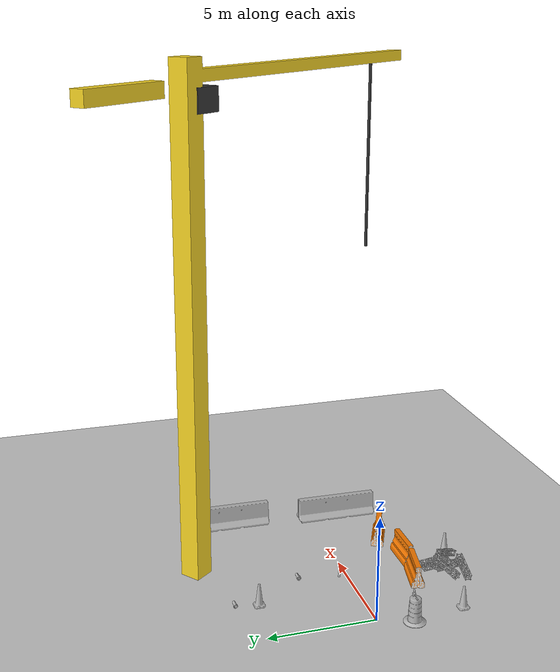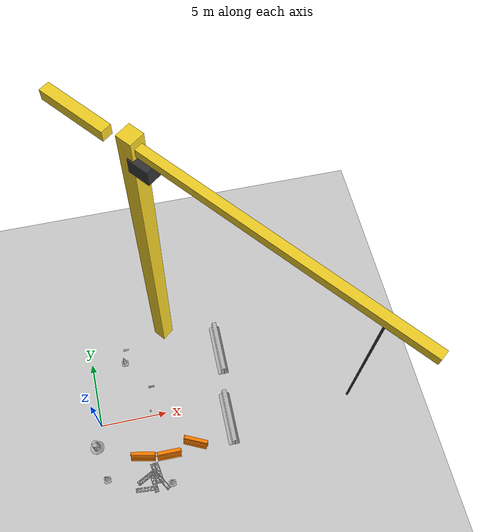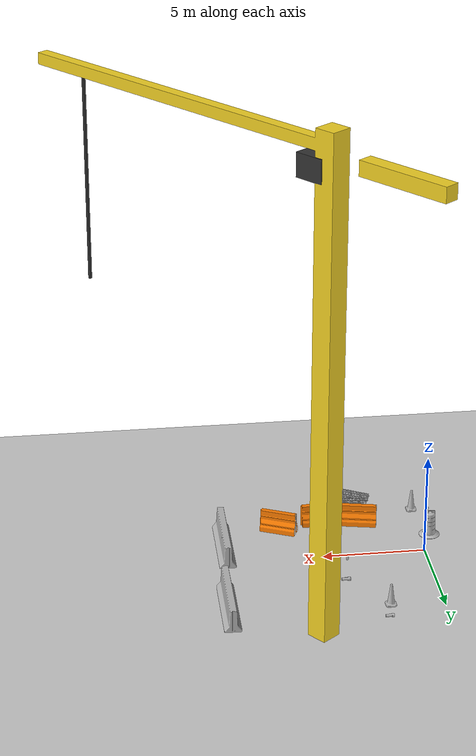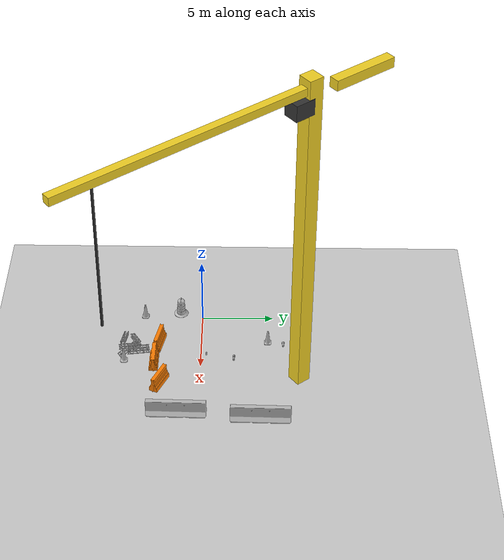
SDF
<sdf version="1.6">
 <world name="default">
  <model name="ground_plane">
   <static>1</static>
   <link name="link">
    <collision name="collision">
     <geometry><plane><normal>0 0 1</normal><size>100 100</size></plane></geometry>
     <surface><friction><ode><mu>100</mu><mu2>50</mu2></ode></friction></surface>
    </collision>
    <visual name="visual">
     <cast_shadows>0</cast_shadows>
     <geometry><plane><normal>0 0 1</normal><size>100 100</size></plane></geometry>
     <material>
      <script><uri>file://media/materials/scripts/gazebo.material</uri><name>Gazebo/Grey</name></script>
     </material>
    </visual>
   </link>
  </model>
  <model name="tower_crane">
   <static>1</static>
   <link name="link">
    <collision name="collision">
     <geometry><mesh><uri>model://tower_crane/meshes/tower_crane.dae</uri></mesh></geometry>
    </collision>
    <visual name="visual">
     <geometry><mesh><uri>model://tower_crane/meshes/tower_crane.dae</uri></mesh></geometry>
    </visual>
   </link>
   <pose>6.03726 6.79238 0 0 0 -0.898155</pose>
  </model>
  <model name="Construction Barrel_0">
   <link name="link">
    <inertial>
     <pose>0 0 0.4 0 -0 0</pose>
     <mass>500</mass>
     <inertia><ixx>51.2096</ixx><iyy>51.2096</iyy><izz>25</izz><ixy>0</ixy><ixz>0</ixz><iyz>0</iyz></inertia>
    </inertial>
    <collision name="collision">
     <geometry><mesh><uri>model://construction_barrel/meshes/construction_barrel.dae</uri></mesh></geometry>
    </collision>
    <visual name="visual">
     <geometry><mesh><uri>model://construction_barrel/meshes/construction_barrel.dae</uri></mesh></geometry>
    </visual>
   </link>
   <pose>-0.545068 -1.56645 -0 0 -0 5.6e-05</pose>
  </model>
  <model name="drc_practice_organge_jersey_barrier_clone_clone_clone_clone">
   <static>1</static>
   <link name="link">
    <visual name="visual">
     <geometry>
      <mesh><uri>model://drc_practice_orange_jersey_barrier/meshes/jersey_barrier.dae</uri></mesh>
     </geometry>
    </visual>
    <collision name="collision">
     <geometry>
      <mesh><uri>model://drc_practice_orange_jersey_barrier/meshes/jersey_barrier.dae</uri></mesh>
     </geometry>
    </collision>
   </link>
   <pose>2.74419 -2.98704 0 0 -0 1.36537</pose>
  </model>
  <model name="drc_practice_organge_jersey_barrier_clone_clone_clone_clone_0">
   <static>1</static>
   <link name="link">
    <visual name="visual">
     <geometry>
      <mesh><uri>model://drc_practice_orange_jersey_barrier/meshes/jersey_barrier.dae</uri></mesh>
     </geometry>
    </visual>
    <collision name="collision">
     <geometry>
      <mesh><uri>model://drc_practice_orange_jersey_barrier/meshes/jersey_barrier.dae</uri></mesh>
     </geometry>
    </collision>
   </link>
   <pose>4.65125 -3.23691 0 0 -0 1.56758</pose>
  </model>
  <model name="drc_practice_organge_jersey_barrier_clone_clone_clone_clone_0_clone">
   <static>1</static>
   <link name="link">
    <visual name="visual">
     <geometry>
      <mesh><uri>model://drc_practice_orange_jersey_barrier/meshes/jersey_barrier.dae</uri></mesh>
     </geometry>
    </visual>
    <collision name="collision">
     <geometry>
      <mesh><uri>model://drc_practice_orange_jersey_barrier/meshes/jersey_barrier.dae</uri></mesh>
     </geometry>
    </collision>
   </link>
   <pose>6.76004 -2.75764 0 0 -0 1.13718</pose>
  </model>
  <model name="jersey_barrier">
   <static>1</static>
   <link name="link">
    <visual name="visual">
     <geometry><mesh><uri>model://jersey_barrier/meshes/jersey_barrier.dae</uri></mesh></geometry>
    </visual>
    <collision name="upright">
     <pose>0 0 0.5715 0 -0 0</pose>
     <geometry><box><size>4.06542 0.3063 1.143</size></box></geometry>
    </collision>
    <collision name="base">
     <pose>0 0 0.032258 0 -0 0</pose>
     <geometry><box><size>4.06542 0.8107 0.064516</size></box></geometry>
    </collision>
    <collision name="base2">
     <pose>0 0 0.1 0 -0 0</pose>
     <geometry><box><size>4.06542 0.65 0.1</size></box></geometry>
    </collision>
    <collision name="base3">
     <pose>0 0 0.2 0 -0 0</pose>
     <geometry><box><size>4.06542 0.5 0.1</size></box></geometry>
    </collision>
    <collision name="left-angle">
     <pose>0 -0.224 0.2401 0.9 -0 0</pose>
     <geometry><box><size>4.06542 0.5 0.064516</size></box></geometry>
    </collision>
    <collision name="right-angle">
     <pose>0 0.224 0.2401 -0.9 0 0</pose>
     <geometry><box><size>4.06542 0.5 0.064516</size></box></geometry>
    </collision>
   </link>
   <pose>9.60721 -1.47907 0 0 -0 1.55298</pose>
  </model>
  <model name="jersey_barrier_clone">
   <static>1</static>
   <link name="link">
    <visual name="visual">
     <geometry><mesh><uri>model://jersey_barrier/meshes/jersey_barrier.dae</uri></mesh></geometry>
    </visual>
    <collision name="upright">
     <pose>0 0 0.5715 0 -0 0</pose>
     <geometry><box><size>4.06542 0.3063 1.143</size></box></geometry>
    </collision>
    <collision name="base">
     <pose>0 0 0.032258 0 -0 0</pose>
     <geometry><box><size>4.06542 0.8107 0.064516</size></box></geometry>
    </collision>
    <collision name="base2">
     <pose>0 0 0.1 0 -0 0</pose>
     <geometry><box><size>4.06542 0.65 0.1</size></box></geometry>
    </collision>
    <collision name="base3">
     <pose>0 0 0.2 0 -0 0</pose>
     <geometry><box><size>4.06542 0.5 0.1</size></box></geometry>
    </collision>
    <collision name="left-angle">
     <pose>0 -0.224 0.2401 0.9 -0 0</pose>
     <geometry><box><size>4.06542 0.5 0.064516</size></box></geometry>
    </collision>
    <collision name="right-angle">
     <pose>0 0.224 0.2401 -0.9 0 0</pose>
     <geometry><box><size>4.06542 0.5 0.064516</size></box></geometry>
    </collision>
   </link>
   <pose>10.0278 4.16885 0 0 -0 1.55298</pose>
  </model>
  <model name="beer">
   <link name="link">
    <pose>0 0 0.115 0 -0 0</pose>
    <inertial>
     <mass>0.39</mass>
     <inertia><ixx>0.00058</ixx><ixy>0</ixy><ixz>0</ixz><iyy>0.00058</iyy><iyz>0</iyz><izz>0.00019</izz></inertia>
    </inertial>
    <collision name="collision">
     <geometry><cylinder><radius>0.055</radius><length>0.23</length></cylinder></geometry>
    </collision>
    <visual name="visual">
     <geometry><cylinder><radius>0.055</radius><length>0.23</length></cylinder></geometry>
     <material>
      <script>
       <uri>model://beer/materials/scripts</uri>
       <uri>model://beer/materials/textures</uri>
       <name>Beer/Diffuse</name>
      </script>
     </material>
    </visual>
   </link>
   <pose>3.85469 0.373429 -7e-06 -1e-06 -0 0.000281</pose>
  </model>
  <model name="standpipe">
   <static>1</static>
   <link name="standpipe">
    <pose>0 0 0.1 0 1.57078 0</pose>
    <collision name="collision_stopper">
     <pose>0 0 0.22 0 -0 0</pose>
     <geometry><cylinder><radius>0.069</radius><length>0.1</length></cylinder></geometry>
     <surface><friction><ode><mu>0.5</mu><mu2>0.5</mu2></ode></friction></surface>
    </collision>
    <collision name="collision">
     <pose>0 0 0.15 0 -0 0</pose>
     <geometry><mesh><uri>model://standpipe/meshes/standpipe.dae</uri></mesh></geometry>
     <surface><friction><ode><mu>0.5</mu><mu2>0.5</mu2></ode></friction></surface>
    </collision>
    <visual name="visual">
     <pose>0 0 0.15 0 -0 0</pose>
     <geometry><mesh><uri>model://standpipe/meshes/standpipe.dae</uri></mesh></geometry>
    </visual>
   </link>
   <pose>3.91415 2.30422 0 0 -0 0</pose>
  </model>
  <model name="standpipe_clone">
   <static>1</static>
   <link name="standpipe">
    <pose>0 0 0.1 0 1.57078 0</pose>
    <collision name="collision_stopper">
     <pose>0 0 0.22 0 -0 0</pose>
     <geometry><cylinder><radius>0.069</radius><length>0.1</length></cylinder></geometry>
     <surface><friction><ode><mu>0.5</mu><mu2>0.5</mu2></ode></friction></surface>
    </collision>
    <collision name="collision">
     <pose>0 0 0.15 0 -0 0</pose>
     <geometry><mesh><uri>model://standpipe/meshes/standpipe.dae</uri></mesh></geometry>
     <surface><friction><ode><mu>0.5</mu><mu2>0.5</mu2></ode></friction></surface>
    </collision>
    <visual name="visual">
     <pose>0 0 0.15 0 -0 0</pose>
     <geometry><mesh><uri>model://standpipe/meshes/standpipe.dae</uri></mesh></geometry>
    </visual>
   </link>
   <pose>2.44659 5.74462 0 0 -0 0</pose>
  </model>
  <model name="truss">
   <link name="link">
    <inertial>
     <mass>20.7307</mass>
     <inertia>
      <ixx>4.7978</ixx>
      <ixy>0</ixy>
      <ixz>0</ixz>
      <iyy>0.4699</iyy>
      <iyz>-0.002</iyz>
      <izz>4.7978</izz>
     </inertia>
    </inertial>
    <collision name="collision">
     <geometry><mesh><uri>model://drc_practice_truss/meshes/truss.dae</uri></mesh></geometry>
     <surface>
      <bounce><restitution_coefficient>0</restitution_coefficient><threshold>100000</threshold></bounce>
      <friction><ode><mu>10</mu><mu2>10</mu2></ode></friction>
     </surface>
    </collision>
    <visual name="visual">
     <geometry><mesh><uri>model://drc_practice_truss/meshes/truss.dae</uri></mesh></geometry>
    </visual>
   </link>
   <pose>3.66531 -4.38865 0.143286 9e-06 4e-06 0.15113</pose>
  </model>
  <model name="truss_clone">
   <link name="link">
    <inertial>
     <mass>20.7307</mass>
     <inertia>
      <ixx>4.7978</ixx>
      <ixy>0</ixy>
      <ixz>0</ixz>
      <iyy>0.4699</iyy>
      <iyz>-0.002</iyz>
      <izz>4.7978</izz>
     </inertia>
    </inertial>
    <collision name="collision">
     <geometry><mesh><uri>model://drc_practice_truss/meshes/truss.dae</uri></mesh></geometry>
     <surface>
      <bounce><restitution_coefficient>0</restitution_coefficient><threshold>100000</threshold></bounce>
      <friction><ode><mu>10</mu><mu2>10</mu2></ode></friction>
     </surface>
    </collision>
    <visual name="visual">
     <geometry><mesh><uri>model://drc_practice_truss/meshes/truss.dae</uri></mesh></geometry>
    </visual>
   </link>
   <pose>3.38025 -4.41733 0.147749 3.14131 -0.002459 -2.99119</pose>
  </model>
  <model name="truss_clone_0">
   <link name="link">
    <inertial>
     <mass>20.7307</mass>
     <inertia>
      <ixx>4.7978</ixx>
      <ixy>0</ixy>
      <ixz>0</ixz>
      <iyy>0.4699</iyy>
      <iyz>-0.002</iyz>
      <izz>4.7978</izz>
     </inertia>
    </inertial>
    <collision name="collision">
     <geometry><mesh><uri>model://drc_practice_truss/meshes/truss.dae</uri></mesh></geometry>
     <surface>
      <bounce><restitution_coefficient>0</restitution_coefficient><threshold>100000</threshold></bounce>
      <friction><ode><mu>10</mu><mu2>10</mu2></ode></friction>
     </surface>
    </collision>
    <visual name="visual">
     <geometry><mesh><uri>model://drc_practice_truss/meshes/truss.dae</uri></mesh></geometry>
    </visual>
   </link>
   <pose>3.80642 -5.09522 0.428763 -1.77035 1.18552 1.92159</pose>
  </model>
  <model name="truss_clone_1">
   <link name="link">
    <inertial>
     <mass>20.7307</mass>
     <inertia>
      <ixx>4.7978</ixx>
      <ixy>0</ixy>
      <ixz>0</ixz>
      <iyy>0.4699</iyy>
      <iyz>-0.002</iyz>
      <izz>4.7978</izz>
     </inertia>
    </inertial>
    <collision name="collision">
     <geometry><mesh><uri>model://drc_practice_truss/meshes/truss.dae</uri></mesh></geometry>
     <surface>
      <bounce><restitution_coefficient>0</restitution_coefficient><threshold>100000</threshold></bounce>
      <friction><ode><mu>10</mu><mu2>10</mu2></ode></friction>
     </surface>
    </collision>
    <visual name="visual">
     <geometry><mesh><uri>model://drc_practice_truss/meshes/truss.dae</uri></mesh></geometry>
    </visual>
   </link>
   <pose>3.1735 -5.02441 0.147982 -2.67612 1.57078 -2.5258</pose>
  </model>
  <model name="truss_clone_2">
   <link name="link">
    <inertial>
     <mass>20.7307</mass>
     <inertia>
      <ixx>4.7978</ixx>
      <ixy>0</ixy>
      <ixz>0</ixz>
      <iyy>0.4699</iyy>
      <iyz>-0.002</iyz>
      <izz>4.7978</izz>
     </inertia>
    </inertial>
    <collision name="collision">
     <geometry><mesh><uri>model://drc_practice_truss/meshes/truss.dae</uri></mesh></geometry>
     <surface>
      <bounce><restitution_coefficient>0</restitution_coefficient><threshold>100000</threshold></bounce>
      <friction><ode><mu>10</mu><mu2>10</mu2></ode></friction>
     </surface>
    </collision>
    <visual name="visual">
     <geometry><mesh><uri>model://drc_practice_truss/meshes/truss.dae</uri></mesh></geometry>
    </visual>
   </link>
   <pose>2.725 -4.6226 0.365406 -1.81617 1.27732 0.150286</pose>
  </model>
  <model name="truss_clone_2_clone">
   <link name="link">
    <inertial>
     <mass>20.7307</mass>
     <inertia>
      <ixx>4.7978</ixx>
      <ixy>0</ixy>
      <ixz>0</ixz>
      <iyy>0.4699</iyy>
      <iyz>-0.002</iyz>
      <izz>4.7978</izz>
     </inertia>
    </inertial>
    <collision name="collision">
     <geometry><mesh><uri>model://drc_practice_truss/meshes/truss.dae</uri></mesh></geometry>
     <surface>
      <bounce><restitution_coefficient>0</restitution_coefficient><threshold>100000</threshold></bounce>
      <friction><ode><mu>10</mu><mu2>10</mu2></ode></friction>
     </surface>
    </collision>
    <visual name="visual">
     <geometry><mesh><uri>model://drc_practice_truss/meshes/truss.dae</uri></mesh></geometry>
    </visual>
   </link>
   <pose>2.5583 -5.43784 0.31149 -0.217253 -0.058253 1.46358</pose>
  </model>
  <model name="Construction Cone_clone_clone_clone">
   <link name="link">
    <collision name="collision">
     <geometry>
      <mesh><scale>10 10 10</scale><uri>model://construction_cone/meshes/construction_cone.dae</uri></mesh>
     </geometry>
    </collision>
    <visual name="visual">
     <geometry>
      <mesh><scale>10 10 10</scale><uri>model://construction_cone/meshes/construction_cone.dae</uri></mesh>
     </geometry>
    </visual>
    <inertial>
     <inertia><ixx>1</ixx><ixy>0</ixy><ixz>0</ixz><iyy>1</iyy><iyz>0</iyz><izz>1</izz></inertia>
     <mass>1</mass>
    </inertial>
   </link>
   <pose>-0.135956 -4.11164 -0 0 -0 0</pose>
  </model>
  <model name="standpipe_clone_0">
   <static>1</static>
   <link name="standpipe">
    <pose>0 0 0.1 0 1.57078 0</pose>
    <collision name="collision_stopper">
     <pose>0 0 0.22 0 -0 0</pose>
     <geometry><cylinder><radius>0.069</radius><length>0.1</length></cylinder></geometry>
     <surface><friction><ode><mu>0.5</mu><mu2>0.5</mu2></ode></friction></surface>
    </collision>
    <collision name="collision">
     <pose>0 0 0.15 0 -0 0</pose>
     <geometry><mesh><uri>model://standpipe/meshes/standpipe.dae</uri></mesh></geometry>
     <surface><friction><ode><mu>0.5</mu><mu2>0.5</mu2></ode></friction></surface>
    </collision>
    <visual name="visual">
     <pose>0 0 0.15 0 -0 0</pose>
     <geometry><mesh><uri>model://standpipe/meshes/standpipe.dae</uri></mesh></geometry>
    </visual>
   </link>
   <pose>3.87778 2.30096 0 0 -0 0</pose>
  </model>
  <model name="Construction Cone_clone_clone_clone_clone">
   <link name="link">
    <collision name="collision">
     <geometry>
      <mesh><scale>10 10 10</scale><uri>model://construction_cone/meshes/construction_cone.dae</uri></mesh>
     </geometry>
    </collision>
    <visual name="visual">
     <geometry>
      <mesh><scale>10 10 10</scale><uri>model://construction_cone/meshes/construction_cone.dae</uri></mesh>
     </geometry>
    </visual>
    <inertial>
     <inertia><ixx>1</ixx><ixy>0</ixy><ixz>0</ixz><iyy>1</iyy><iyz>0</iyz><izz>1</izz></inertia>
     <mass>1</mass>
    </inertial>
   </link>
   <pose>4.49742 -5.33639 -2e-05 0 -0 0.002172</pose>
  </model>
  <model name="Construction Cone">
   <link name="link">
    <collision name="collision">
     <geometry>
      <mesh><scale>10 10 10</scale><uri>model://construction_cone/meshes/construction_cone.dae</uri></mesh>
     </geometry>
    </collision>
    <visual name="visual">
     <geometry>
      <mesh><scale>10 10 10</scale><uri>model://construction_cone/meshes/construction_cone.dae</uri></mesh>
     </geometry>
    </visual>
    <inertial>
     <inertia><ixx>1</ixx><ixy>0</ixy><ixz>0</ixz><iyy>1</iyy><iyz>0</iyz><izz>1</izz></inertia>
     <mass>1</mass>
    </inertial>
   </link>
   <pose>2.54262 4.66686 -0 0 -1e-06 0</pose>
  </model>
 </world>
</sdf>
